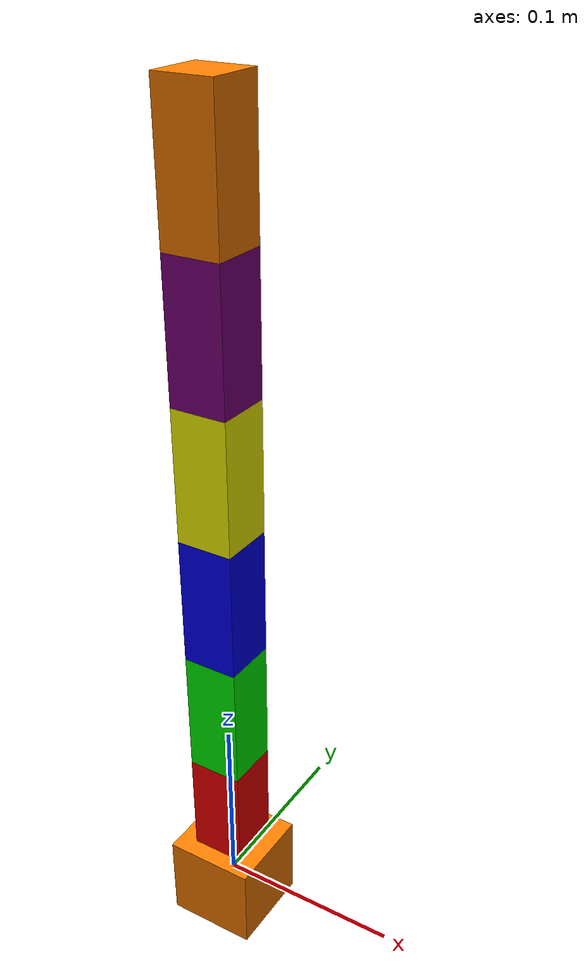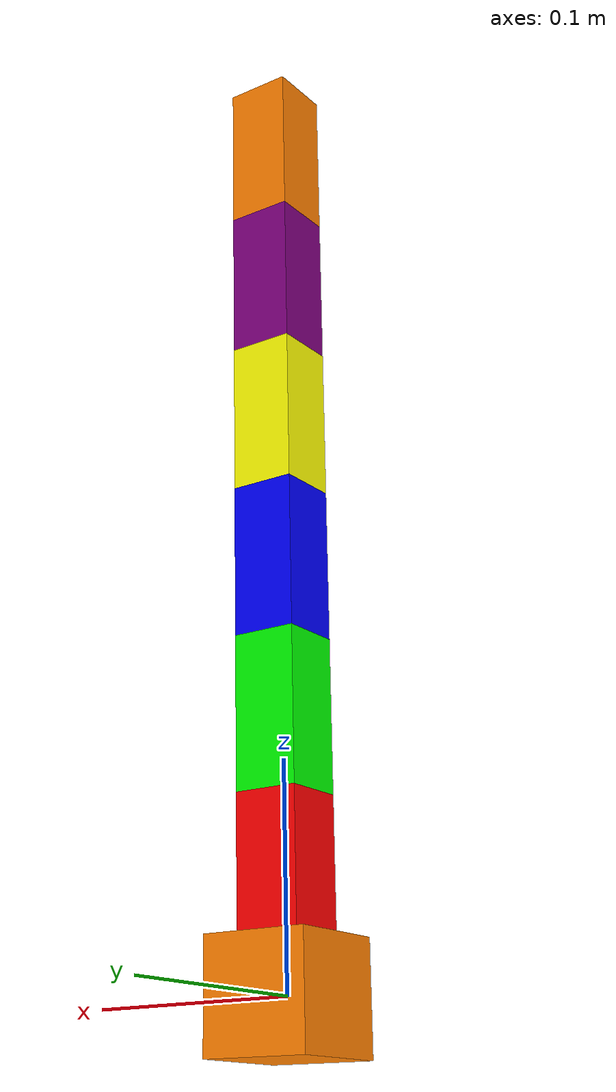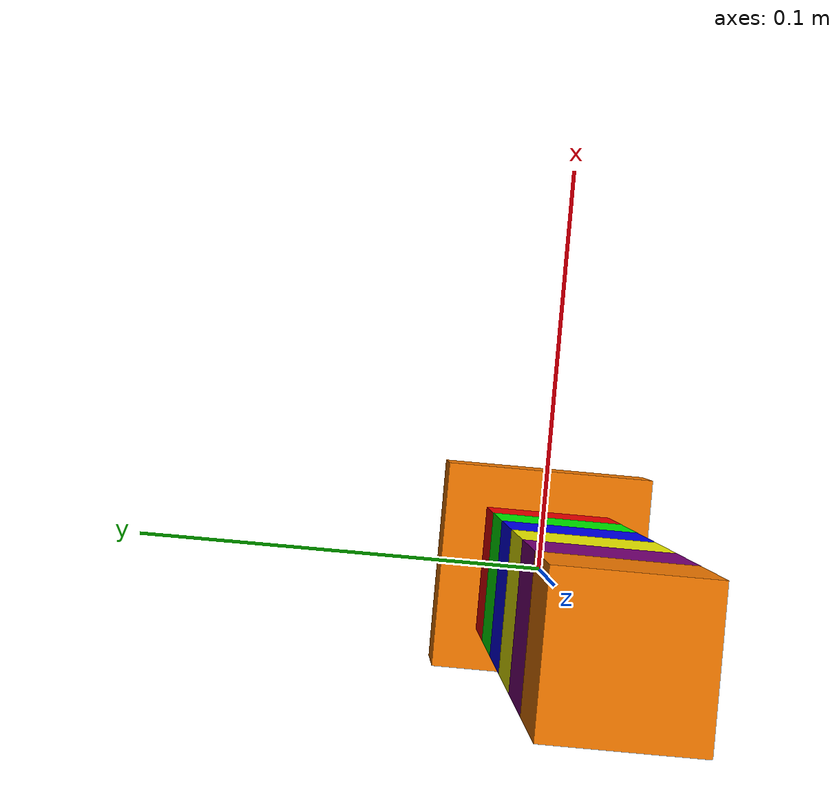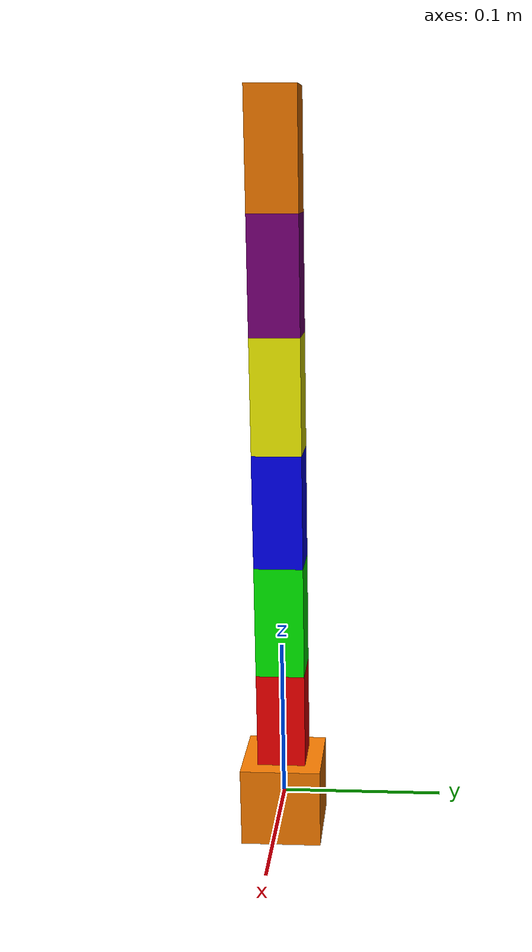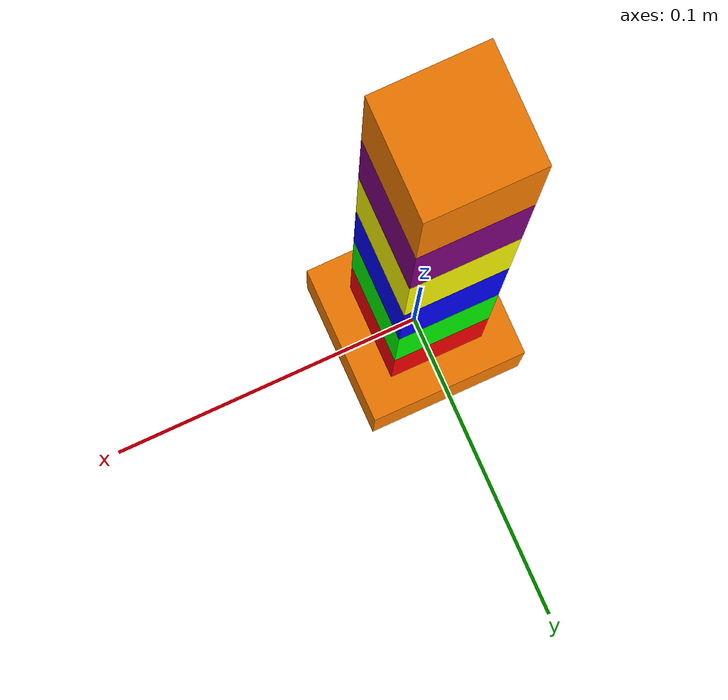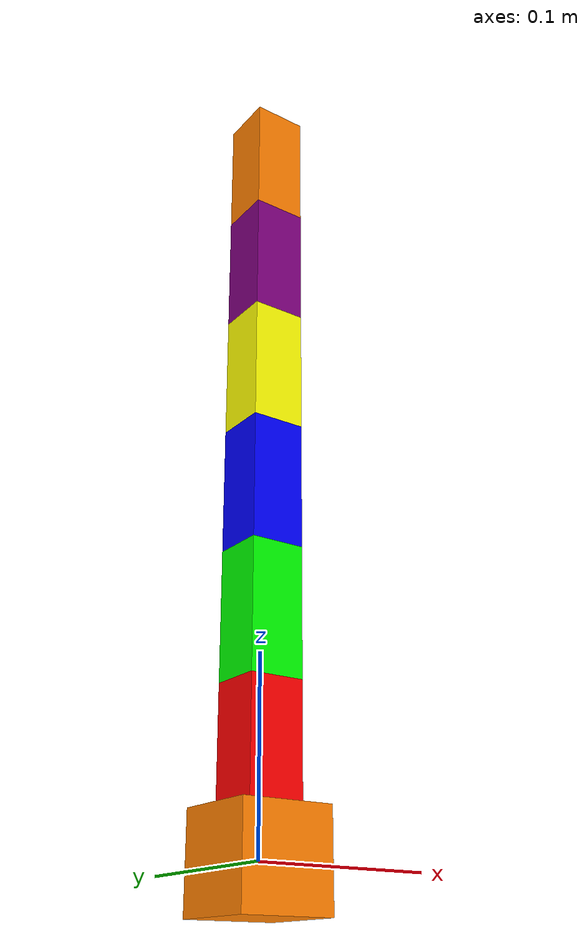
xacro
<?xml version='1.0' encoding='utf-8'?>
<robot xmlns:xacro="http://www.ros.org/wiki/xacro" name="test">

    <!-- Materials -->
    <material name="red">
        <color rgba="1 0 0 1"/>
    </material>
    <material name="green">
        <color rgba="0 1 0 1"/>
    </material>
    <material name="blue">
        <color rgba="0 0 1 1"/>
    </material>
    <material name="yellow">
        <color rgba="1 1 0 1"/>
    </material>
    <material name="purple">
        <color rgba="0.5 0 0.5 1"/>
    </material>
    <material name="orange">
        <color rgba="1 0.5 0 1"/>
    </material>

    <link name="world"/>

    <joint name="base_joint" type="fixed">
        <origin xyz="0 0 0" rpy="0 0 0"/>
        <parent link="world"/>
        <child link="base_link"/>
    </joint>

    <link name="base_link">
        <visual>
            <geometry>
                <box size="0.05 0.05 0.05"/>
            </geometry>
            <material name="orange"/>
        </visual>
        <collision>
            <geometry>
                <box size="0.05 0.05 0.05"/>
            </geometry>
        </collision>
        <inertial>
            <mass value="1"/>
            <inertia ixx="0.000004167" ixy="0.0" ixz="0.0" iyy="0.000004167" iyz="0.0" izz="0.000004167"/>
        </inertial>
    </link>

    <link name="link_1">
        <visual>
            <geometry>
                <box size="0.03 0.03 0.07"/>
            </geometry>
            <material name="red"/>
        </visual>
        <collision>
            <geometry>
                <box size="0.03 0.03 0.07"/>
            </geometry>
        </collision>
        <inertial>
            <mass value="1"/>
            <inertia ixx="0.000004167" ixy="0.0" ixz="0.0" iyy="0.000004167" iyz="0.0" izz="0.000004167"/>
        </inertial>
    </link>

    <joint name="joint_1" type="revolute">
        <origin xyz="0 0 0.05" rpy="0 0 0"/>
        <parent link="base_link"/>
        <child link="link_1"/>
        <axis xyz="0 0 1"/>
        <limit lower="-3.14" upper="3.14" effort="100" velocity="1"/>
    </joint>

    <link name="link_2">
        <visual>
            <geometry>
                <box size="0.03 0.03 0.07"/>
            </geometry>
            <material name="green"/>
        </visual>
        <collision>
            <geometry>
                <box size="0.03 0.03 0.07"/>
            </geometry>
        </collision>
        <inertial>
            <mass value="1"/>
            <inertia ixx="0.000004167" ixy="0.0" ixz="0.0" iyy="0.000004167" iyz="0.0" izz="0.000004167"/>
        </inertial>
    </link>

    <joint name="joint_2" type="revolute">
        <origin xyz="0 0 0.07" rpy="0 0 0"/>
        <parent link="link_1"/>
        <child link="link_2"/>
        <axis xyz="1 0 0"/>
        <limit lower="-3.14" upper="3.14" effort="100" velocity="1"/>
    </joint>

    <link name="link_3">
        <visual>
            <geometry>
                <box size="0.03 0.03 0.07"/>
            </geometry>
            <material name="blue"/>
        </visual>
        <collision>
            <geometry>
                <box size="0.03 0.03 0.07"/>
            </geometry>
        </collision>
        <inertial>
            <mass value="1"/>
            <inertia ixx="0.000004167" ixy="0.0" ixz="0.0" iyy="0.000004167" iyz="0.0" izz="0.000004167"/>
        </inertial>
    </link>

    <joint name="joint_3" type="revolute">
        <origin xyz="0 0 0.07" rpy="0 0 0"/>
        <parent link="link_2"/>
        <child link="link_3"/>
        <axis xyz="0 0 1"/>
        <limit lower="-3.14" upper="3.14" effort="100" velocity="1"/>
    </joint>

    <link name="link_4">
        <visual>
            <geometry>
                <box size="0.03 0.03 0.07"/>
            </geometry>
            <material name="yellow"/>
        </visual>
        <collision>
            <geometry>
                <box size="0.03 0.03 0.07"/>
            </geometry>
        </collision>
        <inertial>
            <mass value="1"/>
            <inertia ixx="0.000004167" ixy="0.0" ixz="0.0" iyy="0.000004167" iyz="0.0" izz="0.000004167"/>
        </inertial>
    </link>

    <joint name="joint_4" type="revolute">
        <origin xyz="0 0 0.07" rpy="0 0 0"/>
        <parent link="link_3"/>
        <child link="link_4"/>
        <axis xyz="1 0 0"/>
        <limit lower="-3.14" upper="3.14" effort="100" velocity="1"/>
    </joint>

    <link name="link_5">
        <visual>
            <geometry>
                <box size="0.03 0.03 0.07"/>
            </geometry>
            <material name="purple"/>
        </visual>
        <collision>
            <geometry>
                <box size="0.03 0.03 0.07"/>
            </geometry>
        </collision>
        <inertial>
            <mass value="1"/>
            <inertia ixx="0.000004167" ixy="0.0" ixz="0.0" iyy="0.000004167" iyz="0.0" izz="0.000004167"/>
        </inertial>
    </link>

    <joint name="joint_5" type="revolute">
        <origin xyz="0 0 0.07" rpy="0 0 0"/>
        <parent link="link_4"/>
        <child link="link_5"/>
        <axis xyz="0 0 1"/>
        <limit lower="-3.14" upper="3.14" effort="100" velocity="1"/>
    </joint>

    <link name="link_6">
        <visual>
            <geometry>
                <box size="0.03 0.03 0.07"/>
            </geometry>
            <material name="orange"/>
        </visual>
        <collision>
            <geometry>
                <box size="0.03 0.03 0.07"/>
            </geometry>
        </collision>
        <inertial>
            <mass value="1"/>
            <inertia ixx="0.000004167" ixy="0.0" ixz="0.0" iyy="0.000004167" iyz="0.0" izz="0.000004167"/>
        </inertial>
    </link>

    <joint name="joint_6" type="revolute">
        <origin xyz="0 0 0.07" rpy="0 0 0"/>
        <parent link="link_5"/>
        <child link="link_6"/>
        <axis xyz="1 0 0"/>
        <limit lower="-3.14" upper="3.14" effort="100" velocity="1"/>
    </joint>

</robot>
